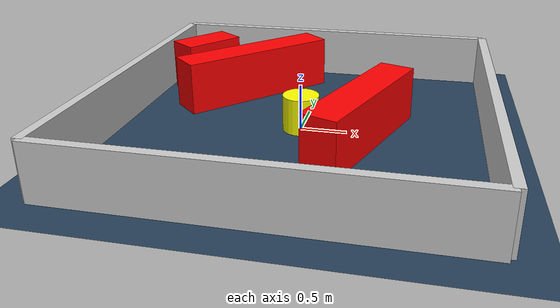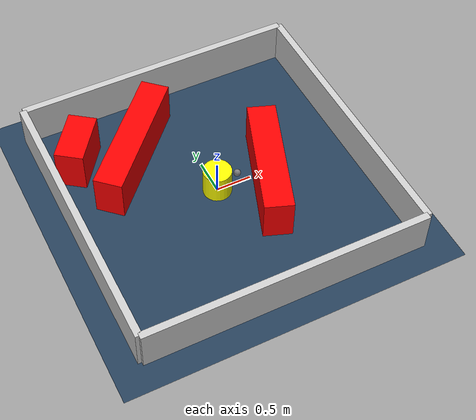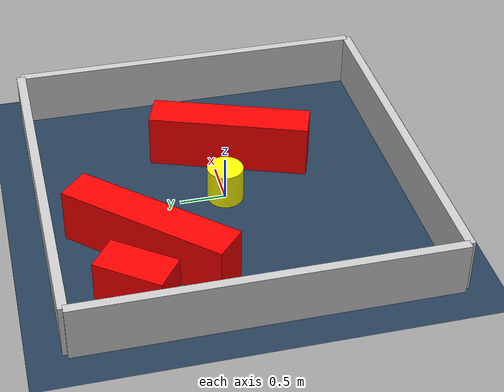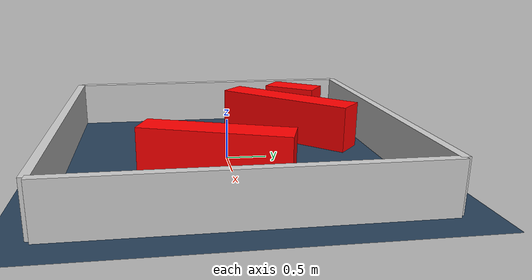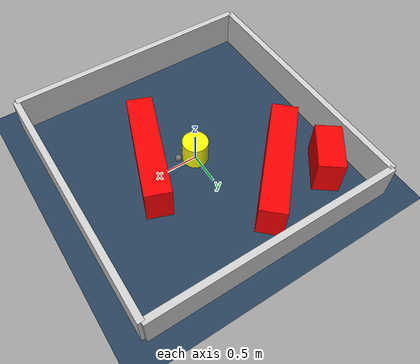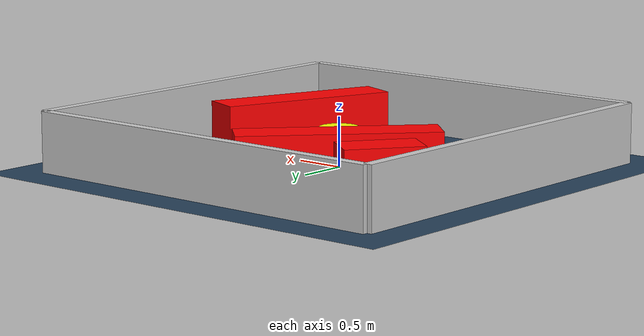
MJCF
<?xml version="1.0" ?>
<mujoco model="generated_environment">
  <option timestep="0.01" integrator="RK4" cone="elliptic"/>
  <default>
    <geom density="1"/>
  </default>
  <asset>
    <texture builtin="gradient" height="3072" rgb1="0.3 0.5 0.7" rgb2="0 0 0" type="skybox" width="512"/>
    <texture builtin="checker" height="300" mark="edge" markrgb="0.8 0.8 0.8" name="groundplane" rgb1="0.2 0.3 0.4" rgb2="0.1 0.2 0.3" type="2d" width="300"/>
    <material name="groundplane" reflectance="0.2" texrepeat="5 5" texture="groundplane" texuniform="true"/>
    <material name="robot" rgba="0.0 1.0 0.0 1"/>
  </asset>
  <worldbody>
    <light dir="0 0 -1" directional="true" pos="0 0 1.5"/>
    <geom condim="4" friction="1.0 0.005 0.001" material="groundplane" name="floor" size="0 0 0.05" type="plane"/>
    <body name="walls">
      <geom name="wall_1" condim="4" pos="-2.0 0.0 0.3" rgba="0.800000011920929 0.800000011920929 0.800000011920929 1.0" size="0.05 2.0 0.3" type="box"/>
      <geom name="wall_2" condim="4" pos="2.0 0.0 0.3" rgba="0.800000011920929 0.800000011920929 0.800000011920929 1.0" size="0.05 2.0 0.3" type="box"/>
      <geom name="wall_3" condim="4" pos="0.0 -2.0 0.3" rgba="0.800000011920929 0.800000011920929 0.800000011920929 1.0" size="2.0 0.05 0.3" type="box"/>
      <geom name="wall_4" condim="4" pos="0.0 2.0 0.3" rgba="0.800000011920929 0.800000011920929 0.800000011920929 1.0" size="2.0 0.05 0.3" type="box"/>
    </body>
    <body name="robot">
      <joint name="joint_x" type="slide" pos="0 0 0" axis="1 0 0"/>
      <joint name="joint_y" type="slide" pos="0 0 0" axis="0 1 0"/>
      <geom name="robot" type="sphere" pos="0.3 0.0 0.2" size="0.05" mass="5." friction="1.0 0.005 0.0001" condim="4" rgba="0.5 0.5 0.5 1.0"/>
      <site name="sensor_ball"/>
    </body>
    <body name="obstacle_movable_1">
      <geom name="obstacle_movable_1" condim="4" pos="0.0 0.0 0.2" euler="0 0 0.0" friction="1.0 0.005 0.001" rgba="1.0 1.0 0.0 1.0" size="0.2 0.2 0.0" type="cylinder" mass="0.1"/>
      <joint type="free"/>
    </body>
    <body name="obstacle_2_static">
      <geom name="obstacle_2_static" condim="4" pos="0.677225452059742 -0.20950702093575968 0.3" euler="0 0 69.82084124938945" friction="1.0 0.005 0.001" rgba="1 0 0 1" size="0.8902088780747706 0.2 0.3" type="box"/>
    </body>
    <body name="obstacle_3_static">
      <geom name="obstacle_3_static" condim="4" pos="-0.8052506181308614 0.9740331963893205 0.3" euler="0 0 226.95208463065197" friction="1.0 0.005 0.001" rgba="1 0 0 1" size="0.9545377888465918 0.2 0.3" type="box"/>
    </body>
    <body name="obstacle_4_static">
      <geom name="obstacle_4_static" condim="4" pos="-1.5208851519534556 1.2372767037478678 0.3" euler="0 0 233.56138829729005" friction="1.0 0.005 0.001" rgba="1 0 0 1" size="0.37465158012337213 0.2 0.3" type="box"/>
    </body>
  </worldbody>
  <actuator>
    <motor name="actuator_x" joint="joint_x" gear="1" ctrlrange="-1 1"/>
    <motor name="actuator_y" joint="joint_y" gear="1" ctrlrange="-1 1"/>
  </actuator>
</mujoco>
